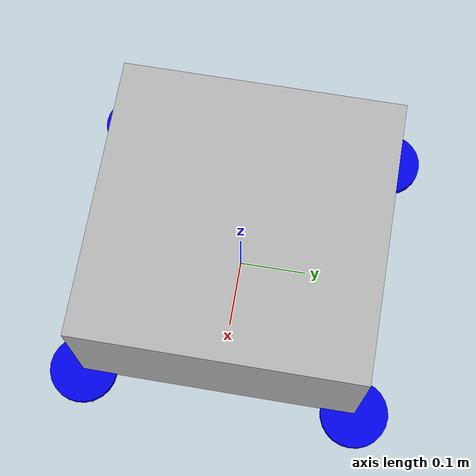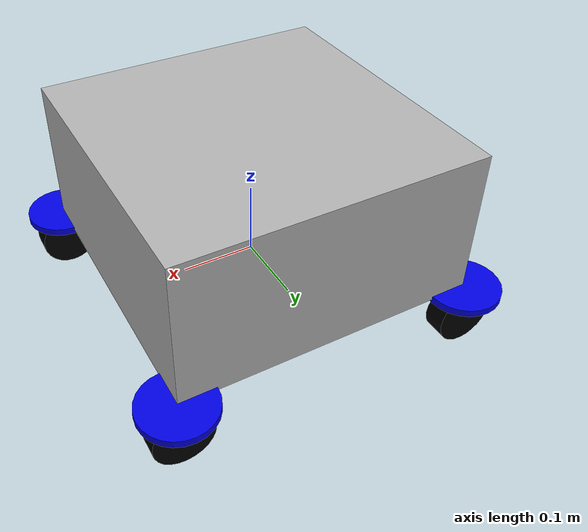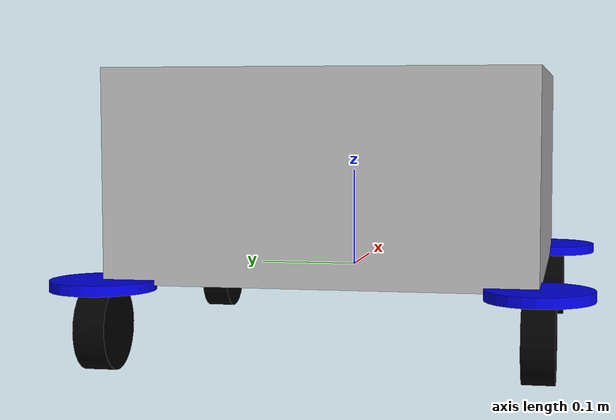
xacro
<?xml version="1.0" encoding="UTF-8"?>
<robot xmlns:xacro="http://www.ros.org/wiki/xacro" name="crackvac">
    <!-- materials -->
    <material name="grey">
       <color rgba="0.7 0.7 0.7 1.0"/>
    </material>
    <material name="blue">
       <color rgba="0 0 0.9 1.0"/>
    </material>
    <material name="black">
       <color rgba="0 0 0 1.0"/>
    </material>

    <!-- constants -->
    <xacro:property name="wheel_radius" value="0.04"/> <!-- length unit: m-->
    <xacro:property name="wheel_width" value="0.03"/>
    <xacro:property name="wheel_base" value="0.4064"/>
    <xacro:property name="wheel_base_half" value="${wheel_base / 2}"/>
    <xacro:property name="chassis_depth" value="0.2032"/>
    <xacro:property name="chassis_mass" value="7.0"/> <!-- mass unit: kg-->
    <xacro:property name="wheel_mass" value="0.186"/> <!-- mass unit: kg-->

    <!-- macros -->
    <link name="dummy_link">
        <collision>
            <geometry>
                <box size="${wheel_base} ${wheel_base} ${chassis_depth}"/>
            </geometry>
        </collision>
        <inertial>
            <mass value="${chassis_mass}"/>
            <inertia
                ixx="${1/12 * chassis_mass * (wheel_base * wheel_base + chassis_depth * chassis_depth)}"
                ixy="0.0"
                ixz="0.0"
                iyy="${1/12 * chassis_mass * (wheel_base * wheel_base + chassis_depth * chassis_depth)}"
                iyz="0.0"
                izz="${1/12 * chassis_mass * (wheel_base * wheel_base + wheel_base * wheel_base)}"
            />
        </inertial>
    </link>
    <joint name="base_fixedpoint" type="fixed">
       <parent link="base_link"/>
       <child link="dummy_link"/>
    </joint>

    <xacro:macro name="chassis">
        <link name="base_link">
            <visual>
                <geometry>
                    <box size="${wheel_base} ${wheel_base} ${chassis_depth}"/>
                </geometry>
                <origin xyz="0.0 0.0 ${chassis_depth / 2}" rpy="0.0 0.0 0.0"/>
                <material name="grey"/>
            </visual>
        </link>
    </xacro:macro>

    <xacro:macro name="swerve_module" params="name mount">
        <link name="${name}_steer_link">
            <visual>
                <geometry>
                    <cylinder radius="0.05" length="0.01"/>
                </geometry>
                <origin xyz="0 0 0" rpy="0 0 0"/>
                <material name="blue"/>
            </visual>
        </link>

        <link name="${name}_wheel_link">
            <visual>
                <geometry>
                    <cylinder radius="${wheel_radius}" length="${wheel_width}"/>
                </geometry>
                <origin xyz="0 0 0" rpy="1.57 0 0"/> <!-- 90 degree is 1.57 rad -->
                <material name="black"/>
            </visual>
            <collision>
                <geometry>
                    <cylinder radius="${wheel_radius}" length="${wheel_width}"/>
                </geometry>
                <origin xyz="0 0 0" rpy="1.57 0 0"/>
            </collision>
            <inertial>
                <mass value="0.079"/>
                <inertia
                    ixx="${1/12 * wheel_mass* (3 * wheel_radius * wheel_radius + wheel_width * wheel_width)}"
                    ixy="0.0"
                    ixz="0.0"
                    iyy="${1/12 * wheel_mass* (3 * wheel_radius * wheel_radius + wheel_width * wheel_width)}"
                    iyz="0.0"
                    izz="${1/2 * wheel_mass * wheel_radius * wheel_radius}"
                />
            </inertial>
        </link>

        <joint name="${name}_steer_joint" type="continuous">
            <parent link="base_link"/>
            <child link="${name}_steer_link"/>
            <origin xyz="${mount}" rpy="0 0 0"/>
            <axis xyz="0 0 1"/>
        </joint>
        <joint name="${name}_wheel_joint" type="continuous">
            <parent link="${name}_steer_link"/>
            <child link="${name}_wheel_link"/>
            <origin xyz="0 0 ${-wheel_radius}" rpy="0.0 0.0 0.0"/>
            <axis xyz="0 1 0"/>
        </joint>
    </xacro:macro>

    <!-- implementation -->
    <xacro:chassis />
    <xacro:swerve_module name="front_left" mount="-${wheel_base_half} ${wheel_base_half} 0.0"/>
    <xacro:swerve_module name="front_right" mount="${wheel_base_half} ${wheel_base_half} 0.0"/>
    <xacro:swerve_module name="back_left" mount="-${wheel_base_half} -${wheel_base_half} 0.0"/>
    <xacro:swerve_module name="back_right" mount="${wheel_base_half} -${wheel_base_half} 0.0"/>

    <!-- control -->
    <xacro:include filename="drivetrain_control.xacro"/>
</robot>
